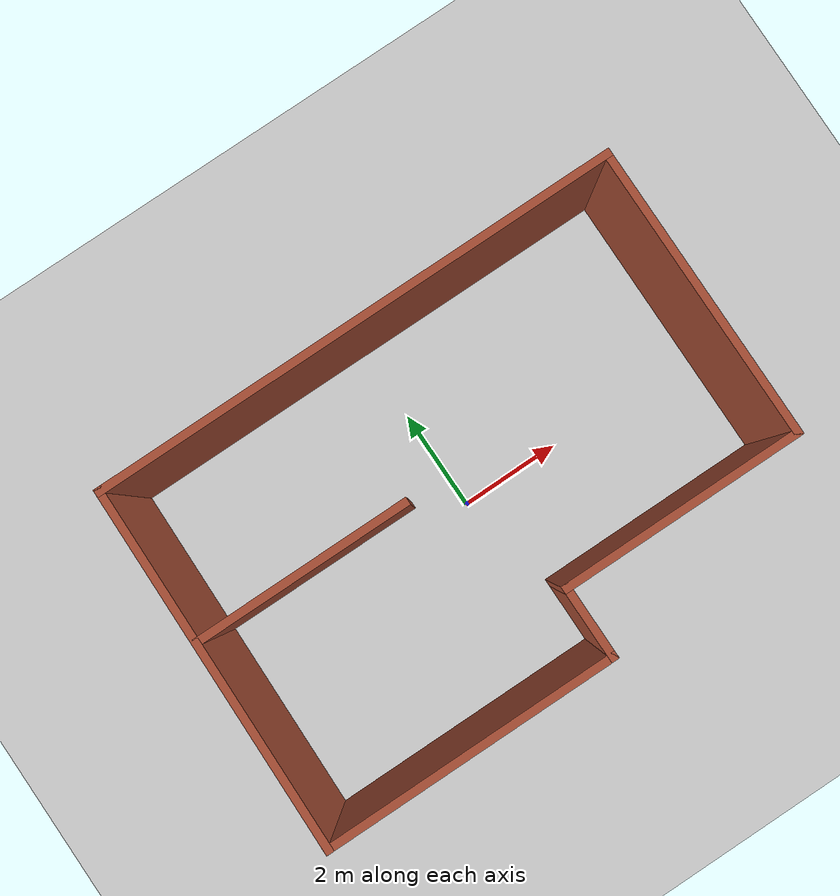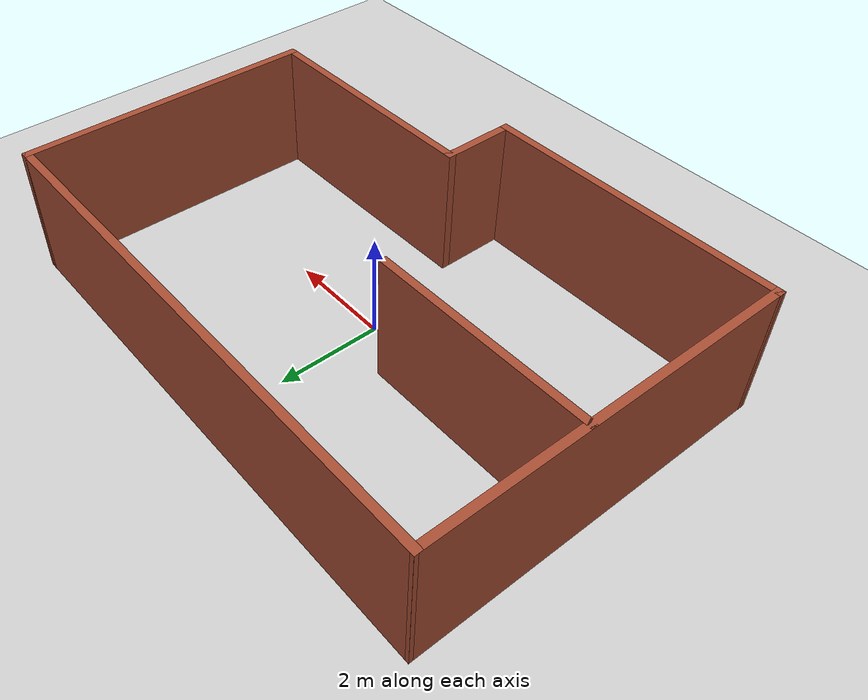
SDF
<sdf version="1.6">
 <world name="default">
  <light name="sun" type="directional">
   <pose>0 0 10 0 -0 0</pose>
   <diffuse>0.8 0.8 0.8 1</diffuse>
   <specular>0.2 0.2 0.2 1</specular>
   <attenuation>
    <range>1000</range>
    <constant>0.9</constant>
    <linear>0.01</linear>
    <quadratic>0.001</quadratic>
   </attenuation>
   <direction>-0.5 0.1 -0.9</direction>
  </light>
  <model name="ground_plane">
   <static>1</static>
   <link name="link">
    <collision name="collision">
     <geometry><plane><normal>0 0 1</normal><size>100 100</size></plane></geometry>
     <surface><friction><ode><mu>100</mu><mu2>50</mu2></ode></friction></surface>
    </collision>
    <visual name="visual">
     <cast_shadows>0</cast_shadows>
     <geometry><plane><normal>0 0 1</normal><size>100 100</size></plane></geometry>
     <material>
      <script><uri>file://media/materials/scripts/gazebo.material</uri><name>Gazebo/Grey</name></script>
     </material>
    </visual>
   </link>
  </model>
  <gravity>0 0 -9.8</gravity>
  <magnetic_field>6e-06 2.3e-05 -4.2e-05</magnetic_field>
  <atmosphere type="adiabatic"/>
  <physics name="default_physics" default="0" type="ode">
   <max_step_size>0.001</max_step_size>
   <real_time_factor>1</real_time_factor>
   <real_time_update_rate>1000</real_time_update_rate>
  </physics>
  <scene><ambient>0.4 0.4 0.4 1</ambient><background>0.7 0.7 0.7 1</background><shadows>1</shadows></scene>
  <spherical_coordinates>
   <surface_model>EARTH_WGS84</surface_model>
   <latitude_deg>0</latitude_deg>
   <longitude_deg>0</longitude_deg>
   <elevation>0</elevation>
   <heading_deg>0</heading_deg>
  </spherical_coordinates>
  <model name="mrworld">
   <pose>0.020942 0.031132 0 0 -0 0</pose>
   <link name="Wall_0">
    <collision name="Wall_0_Collision">
     <geometry><box><size>10.25 0.15 2.5</size></box></geometry>
     <pose>0 0 1.25 0 -0 0</pose>
    </collision>
    <visual name="Wall_0_Visual">
     <pose>0 0 1.25 0 -0 0</pose>
     <geometry><box><size>10.25 0.15 2.5</size></box></geometry>
     <material>
      <script><uri>file://media/materials/scripts/gazebo.material</uri><name>Gazebo/Bricks</name></script>
      <ambient>1 1 1 1</ambient>
     </material>
     <meta><layer>0</layer></meta>
    </visual>
    <pose>0.050535 3.475 0 0 -0 0</pose>
   </link>
   <link name="Wall_1">
    <collision name="Wall_1_Collision">
     <geometry><box><size>5.75 0.15 2.5</size></box></geometry>
     <pose>0 0 1.25 0 -0 0</pose>
    </collision>
    <visual name="Wall_1_Visual">
     <pose>0 0 1.25 0 -0 0</pose>
     <geometry><box><size>5.75 0.15 2.5</size></box></geometry>
     <material>
      <script><uri>file://media/materials/scripts/gazebo.material</uri><name>Gazebo/Bricks</name></script>
      <ambient>1 1 1 1</ambient>
     </material>
     <meta><layer>0</layer></meta>
    </visual>
    <pose>5.10053 0.675 0 0 -0 -1.5708</pose>
   </link>
   <link name="Wall_2">
    <collision name="Wall_2_Collision">
     <geometry><box><size>4.75 0.15 2.5</size></box></geometry>
     <pose>0 0 1.25 0 -0 0</pose>
    </collision>
    <visual name="Wall_2_Visual">
     <pose>0 0 1.25 0 -0 0</pose>
     <geometry><box><size>4.75 0.15 2.5</size></box></geometry>
     <material>
      <script><uri>file://media/materials/scripts/gazebo.material</uri><name>Gazebo/Bricks</name></script>
      <ambient>1 1 1 1</ambient>
     </material>
     <meta><layer>0</layer></meta>
    </visual>
    <pose>2.80053 -2.125 0 0 -0 3.14159</pose>
   </link>
   <link name="Wall_3">
    <collision name="Wall_3_Collision">
     <geometry><box><size>1.5 0.15 2.5</size></box></geometry>
     <pose>0 0 1.25 0 -0 0</pose>
    </collision>
    <visual name="Wall_3_Visual">
     <pose>0 0 1.25 0 -0 0</pose>
     <geometry><box><size>1.5 0.15 2.5</size></box></geometry>
     <material>
      <script><uri>file://media/materials/scripts/gazebo.material</uri><name>Gazebo/Bricks</name></script>
      <ambient>1 1 1 1</ambient>
     </material>
     <meta><layer>0</layer></meta>
    </visual>
    <pose>0.500535 -2.8 0 0 -0 -1.5708</pose>
   </link>
   <link name="Wall_4">
    <collision name="Wall_4_Collision">
     <geometry><box><size>5.75 0.15 2.5</size></box></geometry>
     <pose>0 0 1.25 0 -0 0</pose>
    </collision>
    <visual name="Wall_4_Visual">
     <pose>0 0 1.25 0 -0 0</pose>
     <geometry><box><size>5.75 0.15 2.5</size></box></geometry>
     <material>
      <script><uri>file://media/materials/scripts/gazebo.material</uri><name>Gazebo/Bricks</name></script>
      <ambient>1 1 1 1</ambient>
     </material>
     <meta><layer>0</layer></meta>
    </visual>
    <pose>-2.29946 -3.475 0 0 -0 3.14159</pose>
   </link>
   <link name="Wall_5">
    <collision name="Wall_5_Collision">
     <geometry><box><size>7.10072 0.15 2.5</size></box></geometry>
     <pose>0 0 1.25 0 -0 0</pose>
    </collision>
    <visual name="Wall_5_Visual">
     <pose>0 0 1.25 0 -0 0</pose>
     <geometry><box><size>7.10072 0.15 2.5</size></box></geometry>
     <material>
      <script><uri>file://media/materials/scripts/gazebo.material</uri><name>Gazebo/Bricks</name></script>
      <ambient>1 1 1 1</ambient>
     </material>
     <meta><layer>0</layer></meta>
    </visual>
    <pose>-5.04946 0 0 0 -0 1.55641</pose>
   </link>
   <link name="Wall_7">
    <collision name="Wall_7_Collision">
     <geometry><box><size>4.25 0.15 2.5</size></box></geometry>
     <pose>0 0 1.25 0 -0 0</pose>
    </collision>
    <visual name="Wall_7_Visual">
     <pose>0 0 1.25 0 -0 0</pose>
     <geometry><box><size>4.25 0.15 2.5</size></box></geometry>
     <material>
      <script><uri>file://media/materials/scripts/gazebo.material</uri><name>Gazebo/Bricks</name></script>
      <ambient>1 1 1 1</ambient>
     </material>
     <meta><layer>0</layer></meta>
    </visual>
    <pose>-2.98445 0.519179 0 0 -0 0</pose>
   </link>
   <static>1</static>
  </model>
 </world>
 <model name="Ar_tags">
  <pose>-1.17591 -3.91126 0.42 -1.5708 0 0</pose>
  <scale>1 1 1</scale>
  <link name="link_1">
   <pose>-1.17591 -3.91126 0.42 -1.5708 0 0</pose>
   <velocity>0 0 0 0 -0 0</velocity>
   <acceleration>0 0 0 0 -0 0</acceleration>
   <wrench>0 0 0 0 -0 0</wrench>
  </link>
 </model>
</sdf>
